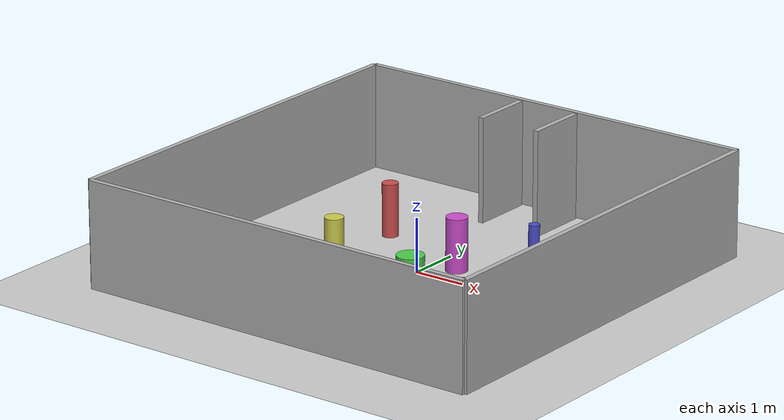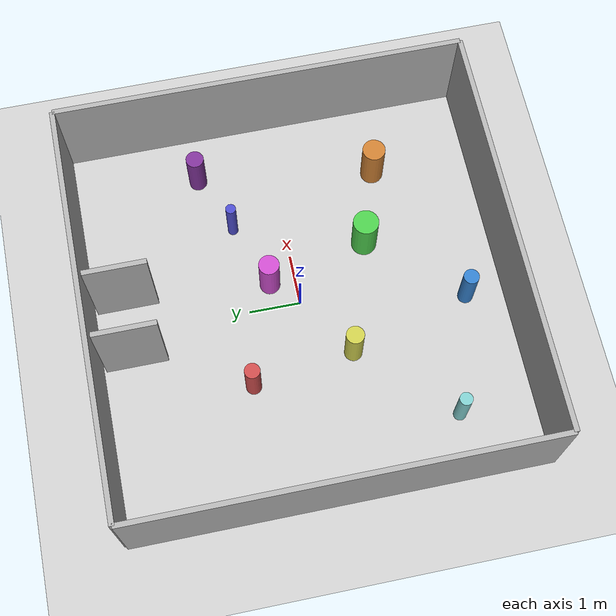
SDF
<?xml version="1.0" ?>
<sdf version="1.9">
  <world name="assessment_world">
    <!-- Physics -->
    <physics name="1ms" type="ignored">
      <max_step_size>0.001</max_step_size>
      <real_time_factor>1.0</real_time_factor>
    </physics>

    <!-- Plugins -->
    <plugin filename="gz-sim-physics-system" name="gz::sim::systems::Physics"/>
    <plugin filename="gz-sim-user-commands-system" name="gz::sim::systems::UserCommands"/>
    <plugin filename="gz-sim-scene-broadcaster-system" name="gz::sim::systems::SceneBroadcaster"/>

    <!-- REQUIRED: Sensors Plugin (Lidar will not work without this) -->
    <plugin filename="gz-sim-sensors-system" name="gz::sim::systems::Sensors">
      <render_engine>ogre2</render_engine>
    </plugin>

    <!-- Lighting -->
    <light type="directional" name="sun">
      <cast_shadows>true</cast_shadows>
      <pose>0 0 10 0 0 0</pose>
      <diffuse>0.8 0.8 0.8 1</diffuse>
      <specular>0.2 0.2 0.2 1</specular>
      <attenuation>
        <range>1000</range>
        <constant>0.9</constant>
        <linear>0.01</linear>
        <quadratic>0.001</quadratic>
      </attenuation>
      <direction>-0.5 0.1 -0.9</direction>
    </light>

    <!-- Ground plane -->
    <model name="ground_plane">
      <static>true</static>
      <link name="link">
        <collision name="collision">
          <geometry>
            <plane>
              <normal>0 0 1</normal>
              <size>100 100</size>
            </plane>
          </geometry>
        </collision>
        <visual name="visual">
          <geometry>
            <plane>
              <normal>0 0 1</normal>
              <size>100 100</size>
            </plane>
          </geometry>
          <material>
            <ambient>0.8 0.8 0.8 1</ambient>
            <diffuse>0.8 0.8 0.8 1</diffuse>
            <specular>0.8 0.8 0.8 1</specular>
          </material>
        </visual>
      </link>
    </model>

    <!-- 5m x 5m Enclosure Walls (using boxes) -->
    <!-- Wall thickness: 0.1m, Height: 2.0m -->

    <!-- North Wall -->
    <model name="wall_north">
      <static>true</static>
      <pose>0 4.0 1.0 0 0 0</pose>
      <link name="link">
        <collision name="collision">
          <geometry>
            <box>
              <size>8.0 0.1 2.0</size>
            </box>
          </geometry>
        </collision>
        <visual name="visual">
          <geometry>
            <box>
              <size>8.0 0.1 2.0</size>
            </box>
          </geometry>
          <material>
            <ambient>0.7 0.7 0.7 1</ambient>
            <diffuse>0.7 0.7 0.7 1</diffuse>
          </material>
        </visual>
      </link>
    </model>

    <!-- South Wall -->
    <model name="wall_south">
      <static>true</static>
      <pose>0 -4.0 1.0 0 0 0</pose>
      <link name="link">
        <collision name="collision">
          <geometry>
            <box>
              <size>8.0 0.1 2.0</size>
            </box>
          </geometry>
        </collision>
        <visual name="visual">
          <geometry>
            <box>
              <size>8.0 0.1 2.0</size>
            </box>
          </geometry>
          <material>
            <ambient>0.7 0.7 0.7 1</ambient>
            <diffuse>0.7 0.7 0.7 1</diffuse>
          </material>
        </visual>
      </link>
    </model>

    <!-- East Wall -->
    <model name="wall_east">
      <static>true</static>
      <pose>4.0 0 1.0 0 0 0</pose>
      <link name="link">
        <collision name="collision">
          <geometry>
            <box>
              <size>0.1 8.0 2.0</size>
            </box>
          </geometry>
        </collision>
        <visual name="visual">
          <geometry>
            <box>
              <size>0.1 8.0 2.0</size>
            </box>
          </geometry>
          <material>
            <ambient>0.7 0.7 0.7 1</ambient>
            <diffuse>0.7 0.7 0.7 1</diffuse>
          </material>
        </visual>
      </link>
    </model>

    <!-- West Wall -->
    <model name="wall_west">
      <static>true</static>
      <pose>-4.0 0 1.0 0 0 0</pose>
      <link name="link">
        <collision name="collision">
          <geometry>
            <box>
              <size>0.1 8.0 2.0</size>
            </box>
          </geometry>
        </collision>
        <visual name="visual">
          <geometry>
            <box>
              <size>0.1 8.0 2.0</size>
            </box>
          </geometry>
          <material>
            <ambient>0.7 0.7 0.7 1</ambient>
            <diffuse>0.7 0.7 0.7 1</diffuse>
          </material>
        </visual>
      </link>
    </model>

    <!-- Pen walls - top-left corner -->
    <!-- Left pen - vertical wall jutting inward -->
    <model name="pen_wall_top_left_vertical">
      <static>true</static>
      <pose>-0.6 3.3 1.0 0 0 1.5708</pose>
      <link name="link">
        <collision name="collision">
          <geometry>
            <box>
              <size>1.2 0.1 2.0</size>
            </box>
          </geometry>
        </collision>
        <visual name="visual">
          <geometry>
            <box>
              <size>1.2 0.1 2.0</size>
            </box>
          </geometry>
          <material>
            <ambient>0.7 0.7 0.7 1</ambient>
            <diffuse>0.7 0.7 0.7 1</diffuse>
          </material>
        </visual>
      </link>
    </model>

    <!-- Pen walls - top-right corner -->
    <!-- Right pen - vertical wall jutting inward -->
    <model name="pen_wall_top_right_vertical">
      <static>true</static>
      <pose>0.6 3.3 1.0 0 0 1.5708</pose>
      <link name="link">
        <collision name="collision">
          <geometry>
            <box>
              <size>1.2 0.1 2.0</size>
            </box>
          </geometry>
        </collision>
        <visual name="visual">
          <geometry>
            <box>
              <size>1.2 0.1 2.0</size>
            </box>
          </geometry>
          <material>
            <ambient>0.7 0.7 0.7 1</ambient>
            <diffuse>0.7 0.7 0.7 1</diffuse>
          </material>
        </visual>
      </link>
    </model>

    <!-- Random Obstacles (Cylinders) -->
    <!-- Obstacle 1: diameter 0.3m, height 1m -->
    <model name="obstacle_1">
      <static>true</static>
      <pose>-1.5 1.2 0.5 0 0 0</pose>
      <link name="link">
        <collision name="collision">
          <geometry>
            <cylinder>
              <radius>0.15</radius>
              <length>1.0</length>
            </cylinder>
          </geometry>
        </collision>
        <visual name="visual">
          <geometry>
            <cylinder>
              <radius>0.15</radius>
              <length>1.0</length>
            </cylinder>
          </geometry>
          <material>
            <ambient>0.8 0.3 0.3 1</ambient>
            <diffuse>0.8 0.3 0.3 1</diffuse>
          </material>
        </visual>
      </link>
    </model>

    <!-- Obstacle 2: diameter 0.5m, height 1m -->
    <model name="obstacle_2">
      <static>true</static>
      <pose>1.0 -1.5 0.5 0 0 0</pose>
      <link name="link">
        <collision name="collision">
          <geometry>
            <cylinder>
              <radius>0.25</radius>
              <length>1.0</length>
            </cylinder>
          </geometry>
        </collision>
        <visual name="visual">
          <geometry>
            <cylinder>
              <radius>0.25</radius>
              <length>1.0</length>
            </cylinder>
          </geometry>
          <material>
            <ambient>0.3 0.8 0.3 1</ambient>
            <diffuse>0.3 0.8 0.3 1</diffuse>
          </material>
        </visual>
      </link>
    </model>

    <!-- Obstacle 3: diameter 0.2m, height 1m -->
    <model name="obstacle_3">
      <static>true</static>
      <pose>1.8 1.0 0.5 0 0 0</pose>
      <link name="link">
        <collision name="collision">
          <geometry>
            <cylinder>
              <radius>0.10</radius>
              <length>1.0</length>
            </cylinder>
          </geometry>
        </collision>
        <visual name="visual">
          <geometry>
            <cylinder>
              <radius>0.10</radius>
              <length>1.0</length>
            </cylinder>
          </geometry>
          <material>
            <ambient>0.3 0.3 0.8 1</ambient>
            <diffuse>0.3 0.3 0.8 1</diffuse>
          </material>
        </visual>
      </link>
    </model>

    <!-- Obstacle 4: diameter 0.35m, height 1m -->
    <model name="obstacle_4">
      <static>true</static>
      <pose>-1.2 -0.8 0.5 0 0 0</pose>
      <link name="link">
        <collision name="collision">
          <geometry>
            <cylinder>
              <radius>0.175</radius>
              <length>1.0</length>
            </cylinder>
          </geometry>
        </collision>
        <visual name="visual">
          <geometry>
            <cylinder>
              <radius>0.175</radius>
              <length>1.0</length>
            </cylinder>
          </geometry>
          <material>
            <ambient>0.8 0.8 0.3 1</ambient>
            <diffuse>0.8 0.8 0.3 1</diffuse>
          </material>
        </visual>
      </link>
    </model>

    <!-- Obstacle 5: diameter 0.4m, height 1m -->
    <model name="obstacle_5">
      <static>true</static>
      <pose>0.5 0.5 0.5 0 0 0</pose>
      <link name="link">
        <collision name="collision">
          <geometry>
            <cylinder>
              <radius>0.20</radius>
              <length>1.0</length>
            </cylinder>
          </geometry>
        </collision>
        <visual name="visual">
          <geometry>
            <cylinder>
              <radius>0.20</radius>
              <length>1.0</length>
            </cylinder>
          </geometry>
          <material>
            <ambient>0.8 0.3 0.8 1</ambient>
            <diffuse>0.8 0.3 0.8 1</diffuse>
          </material>
        </visual>
      </link>
    </model>

    <!-- Obstacle 6: diameter 0.25m, height 1m -->
    <model name="obstacle_6">
      <static>true</static>
      <pose>-2.8 -2.5 0.5 0 0 0</pose>
      <link name="link">
        <collision name="collision">
          <geometry>
            <cylinder>
              <radius>0.125</radius>
              <length>1.0</length>
            </cylinder>
          </geometry>
        </collision>
        <visual name="visual">
          <geometry>
            <cylinder>
              <radius>0.125</radius>
              <length>1.0</length>
            </cylinder>
          </geometry>
          <material>
            <ambient>0.5 0.8 0.8 1</ambient>
            <diffuse>0.5 0.8 0.8 1</diffuse>
          </material>
        </visual>
      </link>
    </model>

    <!-- Obstacle 7: diameter 0.45m, height 1m -->
    <model name="obstacle_7">
      <static>true</static>
      <pose>2.5 -2.0 0.5 0 0 0</pose>
      <link name="link">
        <collision name="collision">
          <geometry>
            <cylinder>
              <radius>0.225</radius>
              <length>1.0</length>
            </cylinder>
          </geometry>
        </collision>
        <visual name="visual">
          <geometry>
            <cylinder>
              <radius>0.225</radius>
              <length>1.0</length>
            </cylinder>
          </geometry>
          <material>
            <ambient>0.8 0.5 0.2 1</ambient>
            <diffuse>0.8 0.5 0.2 1</diffuse>
          </material>
        </visual>
      </link>
    </model>

    <!-- Obstacle 8: diameter 0.3m, height 1m -->
    <model name="obstacle_8">
      <static>true</static>
      <pose>-0.5 -3.2 0.5 0 0 0</pose>
      <link name="link">
        <collision name="collision">
          <geometry>
            <cylinder>
              <radius>0.15</radius>
              <length>1.0</length>
            </cylinder>
          </geometry>
        </collision>
        <visual name="visual">
          <geometry>
            <cylinder>
              <radius>0.15</radius>
              <length>1.0</length>
            </cylinder>
          </geometry>
          <material>
            <ambient>0.2 0.5 0.8 1</ambient>
            <diffuse>0.2 0.5 0.8 1</diffuse>
          </material>
        </visual>
      </link>
    </model>

    <!-- Obstacle 9: diameter 0.35m, height 1m -->
    <model name="obstacle_9">
      <static>true</static>
      <pose>3.0 1.5 0.5 0 0 0</pose>
      <link name="link">
        <collision name="collision">
          <geometry>
            <cylinder>
              <radius>0.175</radius>
              <length>1.0</length>
            </cylinder>
          </geometry>
        </collision>
        <visual name="visual">
          <geometry>
            <cylinder>
              <radius>0.175</radius>
              <length>1.0</length>
            </cylinder>
          </geometry>
          <material>
            <ambient>0.5 0.2 0.6 1</ambient>
            <diffuse>0.5 0.2 0.6 1</diffuse>
          </material>
        </visual>
      </link>
    </model>

  </world>
</sdf>
